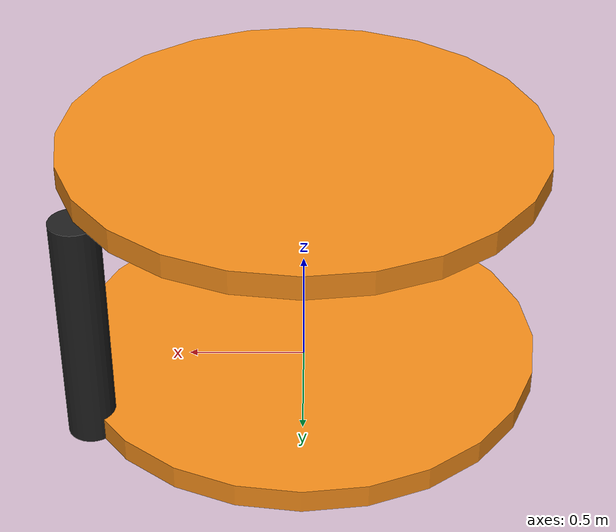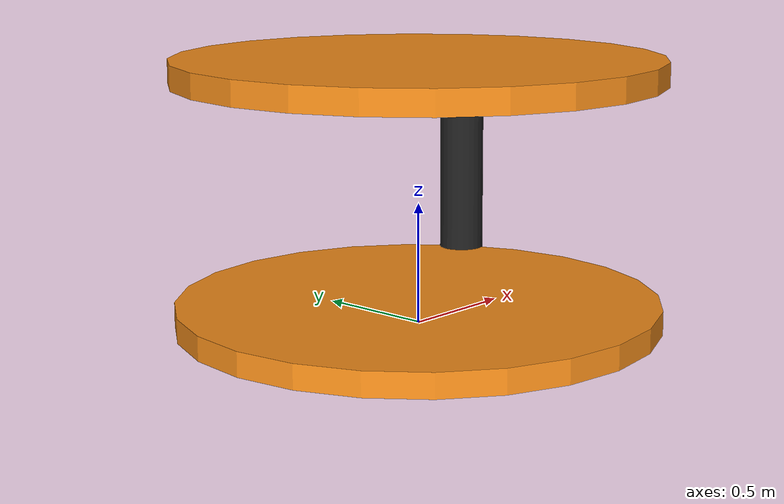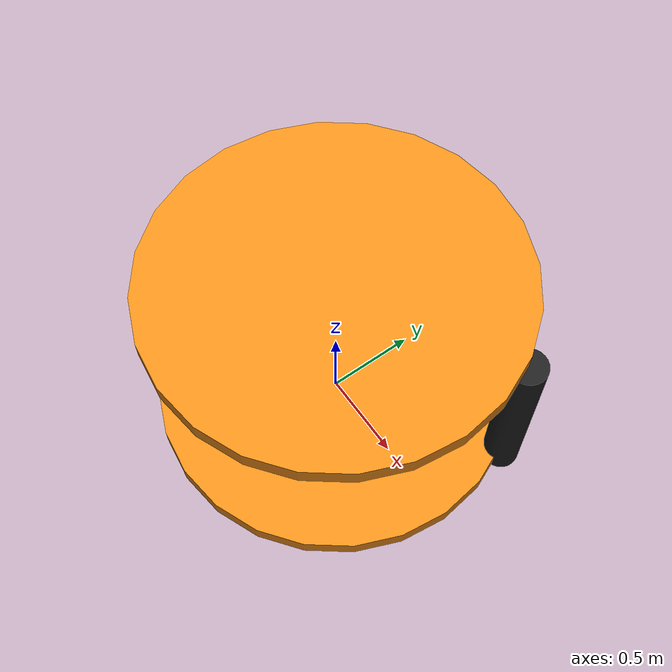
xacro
<?xml version="1.0"?>
<robot xmlns:xacro="http://www.ros.org/wiki/xacro" name="ppr">
    <xacro:property name="PI" value="3.14159265358979"/>
    <xacro:property name="mass" value="1"/>
    <xacro:property name="width1" value="1"/>
    <xacro:property name="width2" value="0.1"/>
    <xacro:property name="height1" value="0.1"/>
    <xacro:property name="height2" value="1"/>
    <xacro:property name="height3" value="1"/>
    <xacro:property name="height4" value="0.1"/>
    <xacro:property name="camera_link" value="0.05"/>
    <xacro:property name="axel_offset" value="0.05"/>

    <xacro:include filename="$(find ppr_description)/urdf/ppr.gazebo"/>

    <xacro:include filename="$(find ppr_description)/urdf/materials.xacro"/>

    <link name="link1">
        <collision>
            <origin xyz="0 0 ${height1/2}" rpy="0.0 0.0 0.0"/>
            <geometry>
                <cylinder radius="${width1}" length="${height1}"/>
            </geometry>
        </collision>>
        <visual>
            <origin xyz="0.0 0.0 ${height1/2}" rpy="0.0 0.0 0.0"/>
            <geometry>
                <cylinder radius="${width1}" length="${height1}"/>
            </geometry>
            <material name="orange"/>
        </visual>
        <inertial>
            <origin xyz="0.0 0.0 ${height1/2}" rpy="0.0 0.0 0.0"/>
            <mass value="${mass}"/>
            <inertia
            ixx="${mass / 12.0 * (width1*width1 + height1*height1)}" ixy="0.0" ixz="0.0"
            iyy="${mass / 12.0 * (height1*height1 + width1*width1)}" iyz="0.0"
            izz="${mass / 12.0 * (width1*width1 + width1*width1)}"/>
        </inertial>
    </link>

    <joint name="motor1" type="revolute">
        <parent link="link1"/>
        <child link="link1_1"/>
        <axis xyz="1 0 0"/>
        <limit lower="-3.14159" upper="3.14159" velocity="50.0" effort="1000.0"/>
        <origin xyz="${0.866025404*width1} ${0.5*width1} ${height1 - axel_offset}" rpy="0 0 ${pi*2/3}"/>
        <dynamics damping="0.7" friction="0.0"/>
    </joint>

    <link name="link1_1">
        <collision>
            <origin xyz="0.0 0.0 0.0" rpy="0.0 0.0 0.0"/>
            <geometry>
                <cylinder radius="0.001" length="0.001"/>
            </geometry>
        </collision>
        <visual>
            <origin xyz="0.0 0.0 0.0" rpy="0.0 0.0 0.0"/>
            <geometry>
                <cylinder radius="0.001" length="0.001"/>
            </geometry>
            <material name="black"/>
        </visual>
        <inertial>
            <origin xyz="0.0 0.0 0.0" rpy="0.0 0.0 0.0"/>
            <mass value="${mass}"/>
            <inertia
            ixx="${mass / 12.0 * (width2*width2 + height2*height2)}" ixy="0.0" ixz="0.0"
            iyy="${mass / 12.0 * (height2*height2 + width2*width2)}" iyz="0.0"
            izz="${mass / 12.0 * (width2*width2 + width2*width2)}"/>
        </inertial>
    </link>

    <joint name="motor2" type="prismatic">
        <parent link="link1_1"/>
        <child link="link2"/>
        <axis xyz="0 0 1"/>
        <limit lower="0.0" upper="${height2}" effort="1000.0" velocity="0.5"/>
        <origin xyz="0.0 0.0 0.0" rpy="0.0 0.0 0.0"/>
        <dynamics damping="0.7" friction="0.0"/>
    </joint>

    <link name="link2">
        <collision>
            <origin xyz="0.0 0.0 ${height2/2 - axel_offset}" rpy="0.0 0.0 0.0"/>
            <geometry>
                <cylinder radius="${width2}" length="${height2}"/>
            </geometry>
        </collision>
        <visual>
            <origin xyz="0.0 0.0 ${height2/2 - axel_offset}" rpy="0.0 0.0 0.0"/>
            <geometry>
                <cylinder radius="${width2}" length="${height2}"/>
            </geometry>
            <material name="black"/>
        </visual>
        <inertial>
            <origin xyz="0.0 0.0 ${height2/2}" rpy="0.0 0.0 0.0"/>
            <mass value="${mass}"/>
            <inertia
            ixx="${mass / 12.0 * (width2*width2 + height2*height2)}" ixy="0.0" ixz="0.0"
            iyy="${mass / 12.0 * (height2*height2 + width2*width2)}" iyz="0.0"
            izz="${mass / 12.0 * (width2*width2 + width2*width2)}"/>
        </inertial>
    </link>

    <joint name="motor4" type="revolute">
        <parent link="link2"/>
        <child link="ppr_upper_link"/>
        <limit lower="-3.14" upper="3.14" effort="100.0" velocity="1.7"/>
        <origin xyz="0 0 ${height2}" rpy="0.0 0.0 0"/>
        <axis xyz="1 0 0"/>
    </joint>

    <link name="ppr_upper_link">
         <collision>
            <origin xyz="0 ${width1} 0" rpy="0.0 0.0 0.0"/>
            <geometry>
                <cylinder radius="${width1}" length="${height1}"/>
            </geometry>
        </collision>>
        <visual>
            <origin xyz="0 ${width1} 0" rpy="0.0 0.0 0.0"/>
            <geometry>
                <cylinder radius="${width1}" length="${height1}"/>
            </geometry>
            <material name="orange"/>
        </visual>
        <inertial>
            <origin xyz="0 ${width1} 0" rpy="0.0 0.0 0.0"/>
            <mass value="${mass}"/>
            <inertia
            ixx="${mass / 12.0 * (width1*width1 + height1*height1)}" ixy="0.0" ixz="0.0"
            iyy="${mass / 12.0 * (height1*height1 + width1*width1)}" iyz="0.0"
            izz="${mass / 12.0 * (width1*width1 + width1*width1)}"/>
        </inertial>
    </link>

     <joint name="motor3" type="prismatic">
        <parent link="link1"/>
        <child link="link4"/>
        <axis xyz="0 0 1"/>
        <limit lower="0.0" upper="1" velocity="0.5" effort="1000.0"/>
        <origin xyz="${0.866025404*-width1} ${-0.5*width1} ${height1 - axel_offset}" rpy="0 0 0"/>
        <dynamics damping="0.7" friction="0.0"/>

    </joint>
    <link name="link4">

    </link>

</robot>
